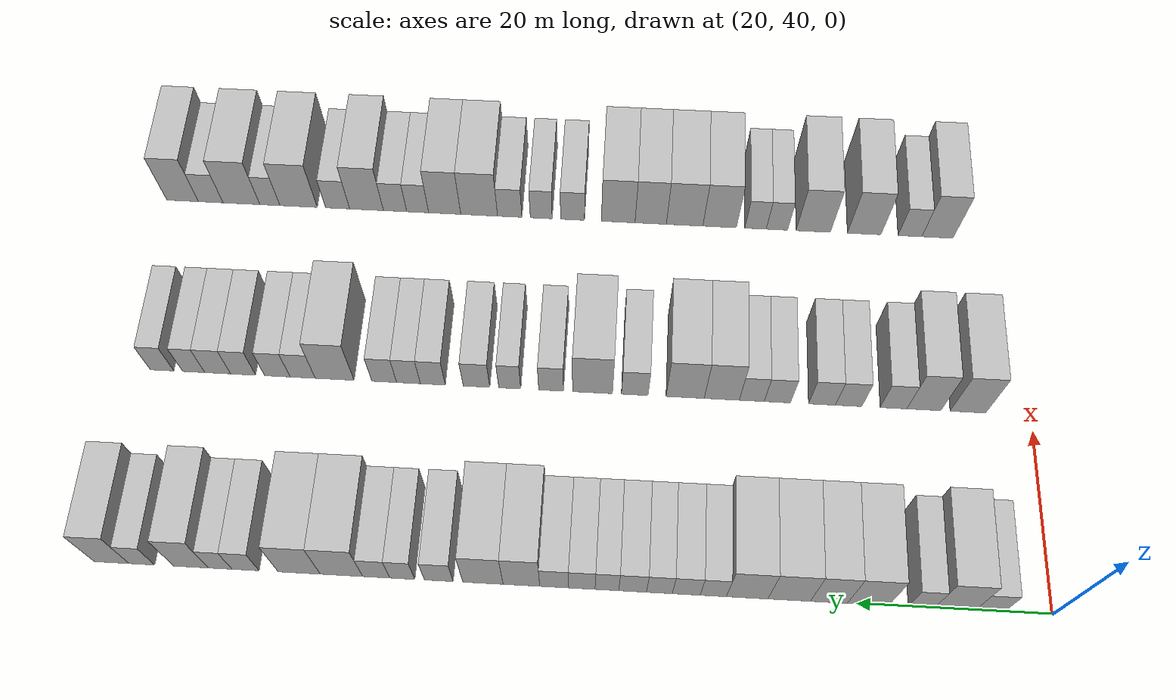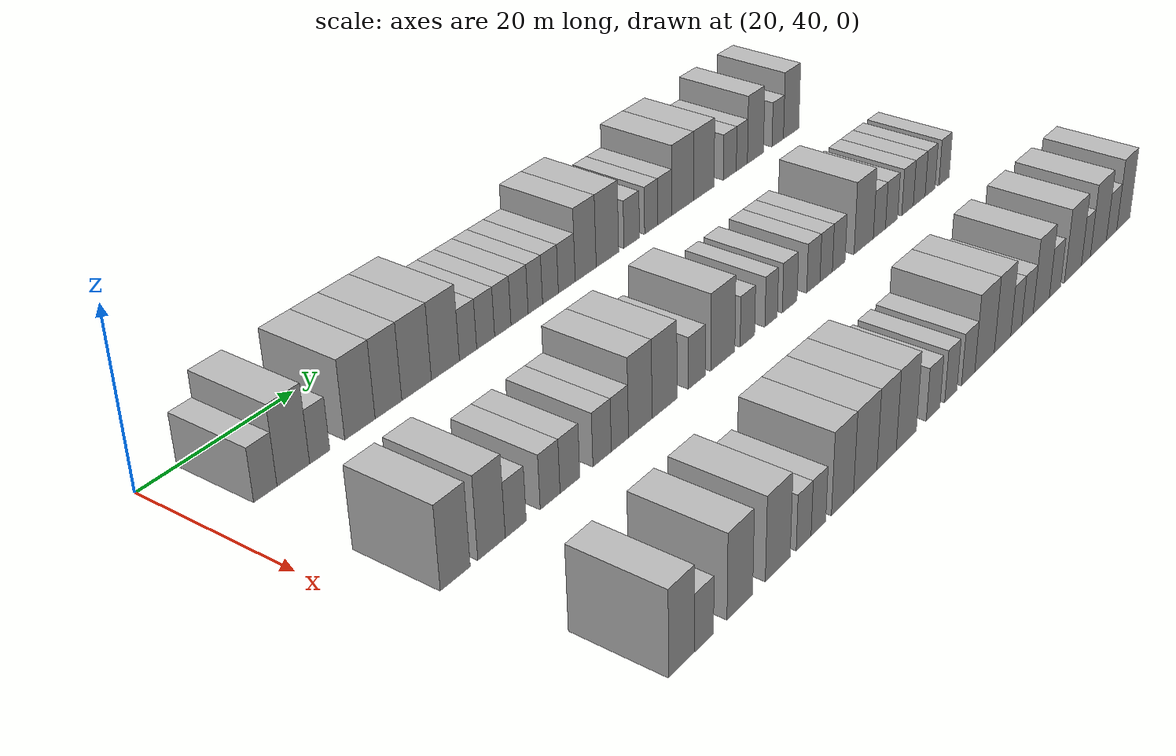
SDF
<sdf version="1.6">
 <world name="default">
  <model name="building_70">
   <static>1</static>
   <pose>25.0000 46.4046 0 0.000000 0.000000 0.000000</pose>
   <link name="link">
    <pose>0 0 3.00 0 0 0</pose>
    <collision name="collision"><geometry><box><size>10.0000 2.9260 6.0000</size></box></geometry></collision>
    <visual name="visual">
     <cast_shadows>0</cast_shadows>
     <geometry><box><size>10.0000 2.9260 6.0000</size></box></geometry>
     <material>
      <script>
       <uri>model://HANNAS_wall/materials/scripts</uri>
       <uri>model://HANNAS_wall/materials/textures</uri>
       <name>vrc/HANNAS_wall</name>
      </script>
     </material>
    </visual>
   </link>
  </model>
  <model name="building_71">
   <static>1</static>
   <pose>25.0000 49.9633 0 0.000000 0.000000 0.000000</pose>
   <link name="link">
    <pose>0 0 4.50 0 0 0</pose>
    <collision name="collision"><geometry><box><size>10.0000 4.1914 9.0000</size></box></geometry></collision>
    <visual name="visual">
     <cast_shadows>0</cast_shadows>
     <geometry><box><size>10.0000 4.1914 9.0000</size></box></geometry>
     <material>
      <script>
       <uri>model://HANNAS_wall/materials/scripts</uri>
       <uri>model://HANNAS_wall/materials/textures</uri>
       <name>vrc/HANNAS_wall</name>
      </script>
     </material>
    </visual>
   </link>
  </model>
  <model name="building_72">
   <static>1</static>
   <pose>25.0000 53.3934 0 0.000000 0.000000 0.000000</pose>
   <link name="link">
    <pose>0 0 3.00 0 0 0</pose>
    <collision name="collision"><geometry><box><size>10.0000 2.6688 6.0000</size></box></geometry></collision>
    <visual name="visual">
     <cast_shadows>0</cast_shadows>
     <geometry><box><size>10.0000 2.6688 6.0000</size></box></geometry>
     <material>
      <script>
       <uri>model://HANNAS_wall/materials/scripts</uri>
       <uri>model://HANNAS_wall/materials/textures</uri>
       <name>vrc/HANNAS_wall</name>
      </script>
     </material>
    </visual>
   </link>
  </model>
  <model name="building_73">
   <static>1</static>
   <pose>25.0000 58.8330 0 0.000000 0.000000 0.000000</pose>
   <link name="link">
    <pose>0 0 4.50 0 0 0</pose>
    <collision name="collision"><geometry><box><size>10.0000 4.2104 9.0000</size></box></geometry></collision>
    <visual name="visual">
     <cast_shadows>0</cast_shadows>
     <geometry><box><size>10.0000 4.2104 9.0000</size></box></geometry>
     <material>
      <script>
       <uri>model://HANNAS_wall/materials/scripts</uri>
       <uri>model://HANNAS_wall/materials/textures</uri>
       <name>vrc/HANNAS_wall</name>
      </script>
     </material>
    </visual>
   </link>
  </model>
  <model name="building_74">
   <static>1</static>
   <pose>25.0000 62.8414 0 0.000000 0.000000 0.000000</pose>
   <link name="link">
    <pose>0 0 4.50 0 0 0</pose>
    <collision name="collision"><geometry><box><size>10.0000 3.8063 9.0000</size></box></geometry></collision>
    <visual name="visual">
     <cast_shadows>0</cast_shadows>
     <geometry><box><size>10.0000 3.8063 9.0000</size></box></geometry>
     <material>
      <script>
       <uri>model://HANNAS_wall/materials/scripts</uri>
       <uri>model://HANNAS_wall/materials/textures</uri>
       <name>vrc/HANNAS_wall</name>
      </script>
     </material>
    </visual>
   </link>
  </model>
  <model name="building_75">
   <static>1</static>
   <pose>25.0000 66.9315 0 0.000000 0.000000 0.000000</pose>
   <link name="link">
    <pose>0 0 4.50 0 0 0</pose>
    <collision name="collision"><geometry><box><size>10.0000 4.3739 9.0000</size></box></geometry></collision>
    <visual name="visual">
     <cast_shadows>0</cast_shadows>
     <geometry><box><size>10.0000 4.3739 9.0000</size></box></geometry>
     <material>
      <script>
       <uri>model://HANNAS_wall/materials/scripts</uri>
       <uri>model://HANNAS_wall/materials/textures</uri>
       <name>vrc/HANNAS_wall</name>
      </script>
     </material>
    </visual>
   </link>
  </model>
  <model name="building_76">
   <static>1</static>
   <pose>25.0000 71.2553 0 0.000000 0.000000 0.000000</pose>
   <link name="link">
    <pose>0 0 4.50 0 0 0</pose>
    <collision name="collision"><geometry><box><size>10.0000 4.2737 9.0000</size></box></geometry></collision>
    <visual name="visual">
     <cast_shadows>0</cast_shadows>
     <geometry><box><size>10.0000 4.2737 9.0000</size></box></geometry>
     <material>
      <script>
       <uri>model://HANNAS_wall/materials/scripts</uri>
       <uri>model://HANNAS_wall/materials/textures</uri>
       <name>vrc/HANNAS_wall</name>
      </script>
     </material>
    </visual>
   </link>
  </model>
  <model name="building_77">
   <static>1</static>
   <pose>25.0000 74.7431 0 0.000000 0.000000 0.000000</pose>
   <link name="link">
    <pose>0 0 3.00 0 0 0</pose>
    <collision name="collision"><geometry><box><size>10.0000 2.7020 6.0000</size></box></geometry></collision>
    <visual name="visual">
     <cast_shadows>0</cast_shadows>
     <geometry><box><size>10.0000 2.7020 6.0000</size></box></geometry>
     <material>
      <script>
       <uri>model://HANNAS_wall/materials/scripts</uri>
       <uri>model://HANNAS_wall/materials/textures</uri>
       <name>vrc/HANNAS_wall</name>
      </script>
     </material>
    </visual>
   </link>
  </model>
  <model name="building_78">
   <static>1</static>
   <pose>25.0000 77.5304 0 0.000000 0.000000 0.000000</pose>
   <link name="link">
    <pose>0 0 3.00 0 0 0</pose>
    <collision name="collision"><geometry><box><size>10.0000 2.8726 6.0000</size></box></geometry></collision>
    <visual name="visual">
     <cast_shadows>0</cast_shadows>
     <geometry><box><size>10.0000 2.8726 6.0000</size></box></geometry>
     <material>
      <script>
       <uri>model://HANNAS_wall/materials/scripts</uri>
       <uri>model://HANNAS_wall/materials/textures</uri>
       <name>vrc/HANNAS_wall</name>
      </script>
     </material>
    </visual>
   </link>
  </model>
  <model name="building_79">
   <static>1</static>
   <pose>25.0000 80.3049 0 0.000000 0.000000 0.000000</pose>
   <link name="link">
    <pose>0 0 3.00 0 0 0</pose>
    <collision name="collision"><geometry><box><size>10.0000 2.6762 6.0000</size></box></geometry></collision>
    <visual name="visual">
     <cast_shadows>0</cast_shadows>
     <geometry><box><size>10.0000 2.6762 6.0000</size></box></geometry>
     <material>
      <script>
       <uri>model://HANNAS_wall/materials/scripts</uri>
       <uri>model://HANNAS_wall/materials/textures</uri>
       <name>vrc/HANNAS_wall</name>
      </script>
     </material>
    </visual>
   </link>
  </model>
  <model name="building_80">
   <static>1</static>
   <pose>25.0000 83.0721 0 0.000000 0.000000 0.000000</pose>
   <link name="link">
    <pose>0 0 3.00 0 0 0</pose>
    <collision name="collision"><geometry><box><size>10.0000 2.8583 6.0000</size></box></geometry></collision>
    <visual name="visual">
     <cast_shadows>0</cast_shadows>
     <geometry><box><size>10.0000 2.8583 6.0000</size></box></geometry>
     <material>
      <script>
       <uri>model://HANNAS_wall/materials/scripts</uri>
       <uri>model://HANNAS_wall/materials/textures</uri>
       <name>vrc/HANNAS_wall</name>
      </script>
     </material>
    </visual>
   </link>
  </model>
  <model name="building_81">
   <static>1</static>
   <pose>25.0000 85.7258 0 0.000000 0.000000 0.000000</pose>
   <link name="link">
    <pose>0 0 3.00 0 0 0</pose>
    <collision name="collision"><geometry><box><size>10.0000 2.4491 6.0000</size></box></geometry></collision>
    <visual name="visual">
     <cast_shadows>0</cast_shadows>
     <geometry><box><size>10.0000 2.4491 6.0000</size></box></geometry>
     <material>
      <script>
       <uri>model://HANNAS_wall/materials/scripts</uri>
       <uri>model://HANNAS_wall/materials/textures</uri>
       <name>vrc/HANNAS_wall</name>
      </script>
     </material>
    </visual>
   </link>
  </model>
  <model name="building_82">
   <static>1</static>
   <pose>25.0000 88.3203 0 0.000000 0.000000 0.000000</pose>
   <link name="link">
    <pose>0 0 3.00 0 0 0</pose>
    <collision name="collision"><geometry><box><size>10.0000 2.7400 6.0000</size></box></geometry></collision>
    <visual name="visual">
     <cast_shadows>0</cast_shadows>
     <geometry><box><size>10.0000 2.7400 6.0000</size></box></geometry>
     <material>
      <script>
       <uri>model://HANNAS_wall/materials/scripts</uri>
       <uri>model://HANNAS_wall/materials/textures</uri>
       <name>vrc/HANNAS_wall</name>
      </script>
     </material>
    </visual>
   </link>
  </model>
  <model name="building_83">
   <static>1</static>
   <pose>25.0000 91.1798 0 0.000000 0.000000 0.000000</pose>
   <link name="link">
    <pose>0 0 3.00 0 0 0</pose>
    <collision name="collision"><geometry><box><size>10.0000 2.9789 6.0000</size></box></geometry></collision>
    <visual name="visual">
     <cast_shadows>0</cast_shadows>
     <geometry><box><size>10.0000 2.9789 6.0000</size></box></geometry>
     <material>
      <script>
       <uri>model://HANNAS_wall/materials/scripts</uri>
       <uri>model://HANNAS_wall/materials/textures</uri>
       <name>vrc/HANNAS_wall</name>
      </script>
     </material>
    </visual>
   </link>
  </model>
  <model name="building_84">
   <static>1</static>
   <pose>25.0000 94.5702 0 0.000000 0.000000 0.000000</pose>
   <link name="link">
    <pose>0 0 4.50 0 0 0</pose>
    <collision name="collision"><geometry><box><size>10.0000 3.8020 9.0000</size></box></geometry></collision>
    <visual name="visual">
     <cast_shadows>0</cast_shadows>
     <geometry><box><size>10.0000 3.8020 9.0000</size></box></geometry>
     <material>
      <script>
       <uri>model://HANNAS_wall/materials/scripts</uri>
       <uri>model://HANNAS_wall/materials/textures</uri>
       <name>vrc/HANNAS_wall</name>
      </script>
     </material>
    </visual>
   </link>
  </model>
  <model name="building_85">
   <static>1</static>
   <pose>25.0000 98.5668 0 0.000000 0.000000 0.000000</pose>
   <link name="link">
    <pose>0 0 4.50 0 0 0</pose>
    <collision name="collision"><geometry><box><size>10.0000 4.1911 9.0000</size></box></geometry></collision>
    <visual name="visual">
     <cast_shadows>0</cast_shadows>
     <geometry><box><size>10.0000 4.1911 9.0000</size></box></geometry>
     <material>
      <script>
       <uri>model://HANNAS_wall/materials/scripts</uri>
       <uri>model://HANNAS_wall/materials/textures</uri>
       <name>vrc/HANNAS_wall</name>
      </script>
     </material>
    </visual>
   </link>
  </model>
  <model name="building_86">
   <static>1</static>
   <pose>25.0000 103.1557 0 0.000000 0.000000 0.000000</pose>
   <link name="link">
    <pose>0 0 3.00 0 0 0</pose>
    <collision name="collision"><geometry><box><size>10.0000 2.9868 6.0000</size></box></geometry></collision>
    <visual name="visual">
     <cast_shadows>0</cast_shadows>
     <geometry><box><size>10.0000 2.9868 6.0000</size></box></geometry>
     <material>
      <script>
       <uri>model://HANNAS_wall/materials/scripts</uri>
       <uri>model://HANNAS_wall/materials/textures</uri>
       <name>vrc/HANNAS_wall</name>
      </script>
     </material>
    </visual>
   </link>
  </model>
  <model name="building_87">
   <static>1</static>
   <pose>25.0000 106.9450 0 0.000000 0.000000 0.000000</pose>
   <link name="link">
    <pose>0 0 3.00 0 0 0</pose>
    <collision name="collision"><geometry><box><size>10.0000 2.5917 6.0000</size></box></geometry></collision>
    <visual name="visual">
     <cast_shadows>0</cast_shadows>
     <geometry><box><size>10.0000 2.5917 6.0000</size></box></geometry>
     <material>
      <script>
       <uri>model://HANNAS_wall/materials/scripts</uri>
       <uri>model://HANNAS_wall/materials/textures</uri>
       <name>vrc/HANNAS_wall</name>
      </script>
     </material>
    </visual>
   </link>
  </model>
  <model name="building_88">
   <static>1</static>
   <pose>25.0000 109.6598 0 0.000000 0.000000 0.000000</pose>
   <link name="link">
    <pose>0 0 3.00 0 0 0</pose>
    <collision name="collision"><geometry><box><size>10.0000 2.8379 6.0000</size></box></geometry></collision>
    <visual name="visual">
     <cast_shadows>0</cast_shadows>
     <geometry><box><size>10.0000 2.8379 6.0000</size></box></geometry>
     <material>
      <script>
       <uri>model://HANNAS_wall/materials/scripts</uri>
       <uri>model://HANNAS_wall/materials/textures</uri>
       <name>vrc/HANNAS_wall</name>
      </script>
     </material>
    </visual>
   </link>
  </model>
  <model name="building_89">
   <static>1</static>
   <pose>25.0000 113.3002 0 0.000000 0.000000 0.000000</pose>
   <link name="link">
    <pose>0 0 4.50 0 0 0</pose>
    <collision name="collision"><geometry><box><size>10.0000 4.4428 9.0000</size></box></geometry></collision>
    <visual name="visual">
     <cast_shadows>0</cast_shadows>
     <geometry><box><size>10.0000 4.4428 9.0000</size></box></geometry>
     <material>
      <script>
       <uri>model://HANNAS_wall/materials/scripts</uri>
       <uri>model://HANNAS_wall/materials/textures</uri>
       <name>vrc/HANNAS_wall</name>
      </script>
     </material>
    </visual>
   </link>
  </model>
  <model name="building_90">
   <static>1</static>
   <pose>25.0000 117.7229 0 0.000000 0.000000 0.000000</pose>
   <link name="link">
    <pose>0 0 4.50 0 0 0</pose>
    <collision name="collision"><geometry><box><size>10.0000 4.4026 9.0000</size></box></geometry></collision>
    <visual name="visual">
     <cast_shadows>0</cast_shadows>
     <geometry><box><size>10.0000 4.4026 9.0000</size></box></geometry>
     <material>
      <script>
       <uri>model://HANNAS_wall/materials/scripts</uri>
       <uri>model://HANNAS_wall/materials/textures</uri>
       <name>vrc/HANNAS_wall</name>
      </script>
     </material>
    </visual>
   </link>
  </model>
  <model name="building_91">
   <static>1</static>
   <pose>25.0000 123.3410 0 0.000000 0.000000 0.000000</pose>
   <link name="link">
    <pose>0 0 3.00 0 0 0</pose>
    <collision name="collision"><geometry><box><size>10.0000 2.8338 6.0000</size></box></geometry></collision>
    <visual name="visual">
     <cast_shadows>0</cast_shadows>
     <geometry><box><size>10.0000 2.8338 6.0000</size></box></geometry>
     <material>
      <script>
       <uri>model://HANNAS_wall/materials/scripts</uri>
       <uri>model://HANNAS_wall/materials/textures</uri>
       <name>vrc/HANNAS_wall</name>
      </script>
     </material>
    </visual>
   </link>
  </model>
  <model name="building_92">
   <static>1</static>
   <pose>25.0000 125.9949 0 0.000000 0.000000 0.000000</pose>
   <link name="link">
    <pose>0 0 3.00 0 0 0</pose>
    <collision name="collision"><geometry><box><size>10.0000 2.4739 6.0000</size></box></geometry></collision>
    <visual name="visual">
     <cast_shadows>0</cast_shadows>
     <geometry><box><size>10.0000 2.4739 6.0000</size></box></geometry>
     <material>
      <script>
       <uri>model://HANNAS_wall/materials/scripts</uri>
       <uri>model://HANNAS_wall/materials/textures</uri>
       <name>vrc/HANNAS_wall</name>
      </script>
     </material>
    </visual>
   </link>
  </model>
  <model name="building_93">
   <static>1</static>
   <pose>25.0000 129.0610 0 0.000000 0.000000 0.000000</pose>
   <link name="link">
    <pose>0 0 4.50 0 0 0</pose>
    <collision name="collision"><geometry><box><size>10.0000 3.6583 9.0000</size></box></geometry></collision>
    <visual name="visual">
     <cast_shadows>0</cast_shadows>
     <geometry><box><size>10.0000 3.6583 9.0000</size></box></geometry>
     <material>
      <script>
       <uri>model://HANNAS_wall/materials/scripts</uri>
       <uri>model://HANNAS_wall/materials/textures</uri>
       <name>vrc/HANNAS_wall</name>
      </script>
     </material>
    </visual>
   </link>
  </model>
  <model name="building_94">
   <static>1</static>
   <pose>25.0000 134.2347 0 0.000000 0.000000 0.000000</pose>
   <link name="link">
    <pose>0 0 3.00 0 0 0</pose>
    <collision name="collision"><geometry><box><size>10.0000 2.6890 6.0000</size></box></geometry></collision>
    <visual name="visual">
     <cast_shadows>0</cast_shadows>
     <geometry><box><size>10.0000 2.6890 6.0000</size></box></geometry>
     <material>
      <script>
       <uri>model://HANNAS_wall/materials/scripts</uri>
       <uri>model://HANNAS_wall/materials/textures</uri>
       <name>vrc/HANNAS_wall</name>
      </script>
     </material>
    </visual>
   </link>
  </model>
  <model name="building_95">
   <static>1</static>
   <pose>25.0000 137.4151 0 0.000000 0.000000 0.000000</pose>
   <link name="link">
    <pose>0 0 4.50 0 0 0</pose>
    <collision name="collision"><geometry><box><size>10.0000 3.6720 9.0000</size></box></geometry></collision>
    <visual name="visual">
     <cast_shadows>0</cast_shadows>
     <geometry><box><size>10.0000 3.6720 9.0000</size></box></geometry>
     <material>
      <script>
       <uri>model://HANNAS_wall/materials/scripts</uri>
       <uri>model://HANNAS_wall/materials/textures</uri>
       <name>vrc/HANNAS_wall</name>
      </script>
     </material>
    </visual>
   </link>
  </model>
  <model name="building_201">
   <static>1</static>
   <pose>47.0000 46.9475 0 0.000000 0.000000 0.000000</pose>
   <link name="link">
    <pose>0 0 4.50 0 0 0</pose>
    <collision name="collision"><geometry><box><size>10.0000 3.9105 9.0000</size></box></geometry></collision>
    <visual name="visual">
     <cast_shadows>0</cast_shadows>
     <geometry><box><size>10.0000 3.9105 9.0000</size></box></geometry>
     <material>
      <script>
       <uri>model://HANNAS_wall/materials/scripts</uri>
       <uri>model://HANNAS_wall/materials/textures</uri>
       <name>vrc/HANNAS_wall</name>
      </script>
     </material>
    </visual>
   </link>
  </model>
  <model name="building_202">
   <static>1</static>
   <pose>47.0000 51.7742 0 0.000000 0.000000 0.000000</pose>
   <link name="link">
    <pose>0 0 4.50 0 0 0</pose>
    <collision name="collision"><geometry><box><size>10.0000 3.7430 9.0000</size></box></geometry></collision>
    <visual name="visual">
     <cast_shadows>0</cast_shadows>
     <geometry><box><size>10.0000 3.7430 9.0000</size></box></geometry>
     <material>
      <script>
       <uri>model://HANNAS_wall/materials/scripts</uri>
       <uri>model://HANNAS_wall/materials/textures</uri>
       <name>vrc/HANNAS_wall</name>
      </script>
     </material>
    </visual>
   </link>
  </model>
  <model name="building_203">
   <static>1</static>
   <pose>47.0000 55.1108 0 0.000000 0.000000 0.000000</pose>
   <link name="link">
    <pose>0 0 3.00 0 0 0</pose>
    <collision name="collision"><geometry><box><size>10.0000 2.9302 6.0000</size></box></geometry></collision>
    <visual name="visual">
     <cast_shadows>0</cast_shadows>
     <geometry><box><size>10.0000 2.9302 6.0000</size></box></geometry>
     <material>
      <script>
       <uri>model://HANNAS_wall/materials/scripts</uri>
       <uri>model://HANNAS_wall/materials/textures</uri>
       <name>vrc/HANNAS_wall</name>
      </script>
     </material>
    </visual>
   </link>
  </model>
  <model name="building_204">
   <static>1</static>
   <pose>47.0000 60.0287 0 0.000000 0.000000 0.000000</pose>
   <link name="link">
    <pose>0 0 3.00 0 0 0</pose>
    <collision name="collision"><geometry><box><size>10.0000 2.9055 6.0000</size></box></geometry></collision>
    <visual name="visual">
     <cast_shadows>0</cast_shadows>
     <geometry><box><size>10.0000 2.9055 6.0000</size></box></geometry>
     <material>
      <script>
       <uri>model://HANNAS_wall/materials/scripts</uri>
       <uri>model://HANNAS_wall/materials/textures</uri>
       <name>vrc/HANNAS_wall</name>
      </script>
     </material>
    </visual>
   </link>
  </model>
  <model name="building_205">
   <static>1</static>
   <pose>47.0000 62.9613 0 0.000000 0.000000 0.000000</pose>
   <link name="link">
    <pose>0 0 3.00 0 0 0</pose>
    <collision name="collision"><geometry><box><size>10.0000 2.9596 6.0000</size></box></geometry></collision>
    <visual name="visual">
     <cast_shadows>0</cast_shadows>
     <geometry><box><size>10.0000 2.9596 6.0000</size></box></geometry>
     <material>
      <script>
       <uri>model://HANNAS_wall/materials/scripts</uri>
       <uri>model://HANNAS_wall/materials/textures</uri>
       <name>vrc/HANNAS_wall</name>
      </script>
     </material>
    </visual>
   </link>
  </model>
  <model name="building_206">
   <static>1</static>
   <pose>47.0000 67.8845 0 0.000000 0.000000 0.000000</pose>
   <link name="link">
    <pose>0 0 3.00 0 0 0</pose>
    <collision name="collision"><geometry><box><size>10.0000 2.8867 6.0000</size></box></geometry></collision>
    <visual name="visual">
     <cast_shadows>0</cast_shadows>
     <geometry><box><size>10.0000 2.8867 6.0000</size></box></geometry>
     <material>
      <script>
       <uri>model://HANNAS_wall/materials/scripts</uri>
       <uri>model://HANNAS_wall/materials/textures</uri>
       <name>vrc/HANNAS_wall</name>
      </script>
     </material>
    </visual>
   </link>
  </model>
  <model name="building_207">
   <static>1</static>
   <pose>47.0000 70.7009 0 0.000000 0.000000 0.000000</pose>
   <link name="link">
    <pose>0 0 3.00 0 0 0</pose>
    <collision name="collision"><geometry><box><size>10.0000 2.7460 6.0000</size></box></geometry></collision>
    <visual name="visual">
     <cast_shadows>0</cast_shadows>
     <geometry><box><size>10.0000 2.7460 6.0000</size></box></geometry>
     <material>
      <script>
       <uri>model://HANNAS_wall/materials/scripts</uri>
       <uri>model://HANNAS_wall/materials/textures</uri>
       <name>vrc/HANNAS_wall</name>
      </script>
     </material>
    </visual>
   </link>
  </model>
  <model name="building_208">
   <static>1</static>
   <pose>47.0000 74.0107 0 0.000000 0.000000 0.000000</pose>
   <link name="link">
    <pose>0 0 4.50 0 0 0</pose>
    <collision name="collision"><geometry><box><size>10.0000 3.8736 9.0000</size></box></geometry></collision>
    <visual name="visual">
     <cast_shadows>0</cast_shadows>
     <geometry><box><size>10.0000 3.8736 9.0000</size></box></geometry>
     <material>
      <script>
       <uri>model://HANNAS_wall/materials/scripts</uri>
       <uri>model://HANNAS_wall/materials/textures</uri>
       <name>vrc/HANNAS_wall</name>
      </script>
     </material>
    </visual>
   </link>
  </model>
  <model name="building_209">
   <static>1</static>
   <pose>47.0000 78.0562 0 0.000000 0.000000 0.000000</pose>
   <link name="link">
    <pose>0 0 4.50 0 0 0</pose>
    <collision name="collision"><geometry><box><size>10.0000 4.2174 9.0000</size></box></geometry></collision>
    <visual name="visual">
     <cast_shadows>0</cast_shadows>
     <geometry><box><size>10.0000 4.2174 9.0000</size></box></geometry>
     <material>
      <script>
       <uri>model://HANNAS_wall/materials/scripts</uri>
       <uri>model://HANNAS_wall/materials/textures</uri>
       <name>vrc/HANNAS_wall</name>
      </script>
     </material>
    </visual>
   </link>
  </model>
  <model name="building_210">
   <static>1</static>
   <pose>47.0000 83.6376 0 0.000000 0.000000 0.000000</pose>
   <link name="link">
    <pose>0 0 3.00 0 0 0</pose>
    <collision name="collision"><geometry><box><size>10.0000 2.9455 6.0000</size></box></geometry></collision>
    <visual name="visual">
     <cast_shadows>0</cast_shadows>
     <geometry><box><size>10.0000 2.9455 6.0000</size></box></geometry>
     <material>
      <script>
       <uri>model://HANNAS_wall/materials/scripts</uri>
       <uri>model://HANNAS_wall/materials/textures</uri>
       <name>vrc/HANNAS_wall</name>
      </script>
     </material>
    </visual>
   </link>
  </model>
  <model name="building_211">
   <static>1</static>
   <pose>47.0000 88.3221 0 0.000000 0.000000 0.000000</pose>
   <link name="link">
    <pose>0 0 4.50 0 0 0</pose>
    <collision name="collision"><geometry><box><size>10.0000 4.4234 9.0000</size></box></geometry></collision>
    <visual name="visual">
     <cast_shadows>0</cast_shadows>
     <geometry><box><size>10.0000 4.4234 9.0000</size></box></geometry>
     <material>
      <script>
       <uri>model://HANNAS_wall/materials/scripts</uri>
       <uri>model://HANNAS_wall/materials/textures</uri>
       <name>vrc/HANNAS_wall</name>
      </script>
     </material>
    </visual>
   </link>
  </model>
  <model name="building_212">
   <static>1</static>
   <pose>47.0000 92.9090 0 0.000000 0.000000 0.000000</pose>
   <link name="link">
    <pose>0 0 3.00 0 0 0</pose>
    <collision name="collision"><geometry><box><size>10.0000 2.7504 6.0000</size></box></geometry></collision>
    <visual name="visual">
     <cast_shadows>0</cast_shadows>
     <geometry><box><size>10.0000 2.7504 6.0000</size></box></geometry>
     <material>
      <script>
       <uri>model://HANNAS_wall/materials/scripts</uri>
       <uri>model://HANNAS_wall/materials/textures</uri>
       <name>vrc/HANNAS_wall</name>
      </script>
     </material>
    </visual>
   </link>
  </model>
  <model name="building_213">
   <static>1</static>
   <pose>47.0000 97.5053 0 0.000000 0.000000 0.000000</pose>
   <link name="link">
    <pose>0 0 3.00 0 0 0</pose>
    <collision name="collision"><geometry><box><size>10.0000 2.4422 6.0000</size></box></geometry></collision>
    <visual name="visual">
     <cast_shadows>0</cast_shadows>
     <geometry><box><size>10.0000 2.4422 6.0000</size></box></geometry>
     <material>
      <script>
       <uri>model://HANNAS_wall/materials/scripts</uri>
       <uri>model://HANNAS_wall/materials/textures</uri>
       <name>vrc/HANNAS_wall</name>
      </script>
     </material>
    </visual>
   </link>
  </model>
  <model name="building_214">
   <static>1</static>
   <pose>47.0000 101.2082 0 0.000000 0.000000 0.000000</pose>
   <link name="link">
    <pose>0 0 3.00 0 0 0</pose>
    <collision name="collision"><geometry><box><size>10.0000 2.9635 6.0000</size></box></geometry></collision>
    <visual name="visual">
     <cast_shadows>0</cast_shadows>
     <geometry><box><size>10.0000 2.9635 6.0000</size></box></geometry>
     <material>
      <script>
       <uri>model://HANNAS_wall/materials/scripts</uri>
       <uri>model://HANNAS_wall/materials/textures</uri>
       <name>vrc/HANNAS_wall</name>
      </script>
     </material>
    </visual>
   </link>
  </model>
  <model name="building_215">
   <static>1</static>
   <pose>47.0000 106.0768 0 0.000000 0.000000 0.000000</pose>
   <link name="link">
    <pose>0 0 3.00 0 0 0</pose>
    <collision name="collision"><geometry><box><size>10.0000 2.7738 6.0000</size></box></geometry></collision>
    <visual name="visual">
     <cast_shadows>0</cast_shadows>
     <geometry><box><size>10.0000 2.7738 6.0000</size></box></geometry>
     <material>
      <script>
       <uri>model://HANNAS_wall/materials/scripts</uri>
       <uri>model://HANNAS_wall/materials/textures</uri>
       <name>vrc/HANNAS_wall</name>
      </script>
     </material>
    </visual>
   </link>
  </model>
  <model name="building_216">
   <static>1</static>
   <pose>47.0000 108.7914 0 0.000000 0.000000 0.000000</pose>
   <link name="link">
    <pose>0 0 3.00 0 0 0</pose>
    <collision name="collision"><geometry><box><size>10.0000 2.6555 6.0000</size></box></geometry></collision>
    <visual name="visual">
     <cast_shadows>0</cast_shadows>
     <geometry><box><size>10.0000 2.6555 6.0000</size></box></geometry>
     <material>
      <script>
       <uri>model://HANNAS_wall/materials/scripts</uri>
       <uri>model://HANNAS_wall/materials/textures</uri>
       <name>vrc/HANNAS_wall</name>
      </script>
     </material>
    </visual>
   </link>
  </model>
  <model name="building_217">
   <static>1</static>
   <pose>47.0000 111.4999 0 0.000000 0.000000 0.000000</pose>
   <link name="link">
    <pose>0 0 3.00 0 0 0</pose>
    <collision name="collision"><geometry><box><size>10.0000 2.7614 6.0000</size></box></geometry></collision>
    <visual name="visual">
     <cast_shadows>0</cast_shadows>
     <geometry><box><size>10.0000 2.7614 6.0000</size></box></geometry>
     <material>
      <script>
       <uri>model://HANNAS_wall/materials/scripts</uri>
       <uri>model://HANNAS_wall/materials/textures</uri>
       <name>vrc/HANNAS_wall</name>
      </script>
     </material>
    </visual>
   </link>
  </model>
  <model name="building_218">
   <static>1</static>
   <pose>47.0000 117.0574 0 0.000000 0.000000 0.000000</pose>
   <link name="link">
    <pose>0 0 4.50 0 0 0</pose>
    <collision name="collision"><geometry><box><size>10.0000 4.3537 9.0000</size></box></geometry></collision>
    <visual name="visual">
     <cast_shadows>0</cast_shadows>
     <geometry><box><size>10.0000 4.3537 9.0000</size></box></geometry>
     <material>
      <script>
       <uri>model://HANNAS_wall/materials/scripts</uri>
       <uri>model://HANNAS_wall/materials/textures</uri>
       <name>vrc/HANNAS_wall</name>
      </script>
     </material>
    </visual>
   </link>
  </model>
  <model name="building_219">
   <static>1</static>
   <pose>47.0000 120.6484 0 0.000000 0.000000 0.000000</pose>
   <link name="link">
    <pose>0 0 3.00 0 0 0</pose>
    <collision name="collision"><geometry><box><size>10.0000 2.8281 6.0000</size></box></geometry></collision>
    <visual name="visual">
     <cast_shadows>0</cast_shadows>
     <geometry><box><size>10.0000 2.8281 6.0000</size></box></geometry>
     <material>
      <script>
       <uri>model://HANNAS_wall/materials/scripts</uri>
       <uri>model://HANNAS_wall/materials/textures</uri>
       <name>vrc/HANNAS_wall</name>
      </script>
     </material>
    </visual>
   </link>
  </model>
  <model name="building_220">
   <static>1</static>
   <pose>47.0000 123.4913 0 0.000000 0.000000 0.000000</pose>
   <link name="link">
    <pose>0 0 3.00 0 0 0</pose>
    <collision name="collision"><geometry><box><size>10.0000 2.8578 6.0000</size></box></geometry></collision>
    <visual name="visual">
     <cast_shadows>0</cast_shadows>
     <geometry><box><size>10.0000 2.8578 6.0000</size></box></geometry>
     <material>
      <script>
       <uri>model://HANNAS_wall/materials/scripts</uri>
       <uri>model://HANNAS_wall/materials/textures</uri>
       <name>vrc/HANNAS_wall</name>
      </script>
     </material>
    </visual>
   </link>
  </model>
  <model name="building_221">
   <static>1</static>
   <pose>47.0000 127.3237 0 0.000000 0.000000 0.000000</pose>
   <link name="link">
    <pose>0 0 3.00 0 0 0</pose>
    <collision name="collision"><geometry><box><size>10.0000 2.8071 6.0000</size></box></geometry></collision>
    <visual name="visual">
     <cast_shadows>0</cast_shadows>
     <geometry><box><size>10.0000 2.8071 6.0000</size></box></geometry>
     <material>
      <script>
       <uri>model://HANNAS_wall/materials/scripts</uri>
       <uri>model://HANNAS_wall/materials/textures</uri>
       <name>vrc/HANNAS_wall</name>
      </script>
     </material>
    </visual>
   </link>
  </model>
  <model name="building_222">
   <static>1</static>
   <pose>47.0000 130.1887 0 0.000000 0.000000 0.000000</pose>
   <link name="link">
    <pose>0 0 3.00 0 0 0</pose>
    <collision name="collision"><geometry><box><size>10.0000 2.9228 6.0000</size></box></geometry></collision>
    <visual name="visual">
     <cast_shadows>0</cast_shadows>
     <geometry><box><size>10.0000 2.9228 6.0000</size></box></geometry>
     <material>
      <script>
       <uri>model://HANNAS_wall/materials/scripts</uri>
       <uri>model://HANNAS_wall/materials/textures</uri>
       <name>vrc/HANNAS_wall</name>
      </script>
     </material>
    </visual>
   </link>
  </model>
  <model name="building_223">
   <static>1</static>
   <pose>47.0000 132.8919 0 0.000000 0.000000 0.000000</pose>
   <link name="link">
    <pose>0 0 3.00 0 0 0</pose>
    <collision name="collision"><geometry><box><size>10.0000 2.4835 6.0000</size></box></geometry></collision>
    <visual name="visual">
     <cast_shadows>0</cast_shadows>
     <geometry><box><size>10.0000 2.4835 6.0000</size></box></geometry>
     <material>
      <script>
       <uri>model://HANNAS_wall/materials/scripts</uri>
       <uri>model://HANNAS_wall/materials/textures</uri>
       <name>vrc/HANNAS_wall</name>
      </script>
     </material>
    </visual>
   </link>
  </model>
  <model name="building_224">
   <static>1</static>
   <pose>47.0000 136.4555 0 0.000000 0.000000 0.000000</pose>
   <link name="link">
    <pose>0 0 3.00 0 0 0</pose>
    <collision name="collision"><geometry><box><size>10.0000 2.6437 6.0000</size></box></geometry></collision>
    <visual name="visual">
     <cast_shadows>0</cast_shadows>
     <geometry><box><size>10.0000 2.6437 6.0000</size></box></geometry>
     <material>
      <script>
       <uri>model://HANNAS_wall/materials/scripts</uri>
       <uri>model://HANNAS_wall/materials/textures</uri>
       <name>vrc/HANNAS_wall</name>
      </script>
     </material>
    </visual>
   </link>
  </model>
  <model name="building_327">
   <static>1</static>
   <pose>69.0000 48.8584 0 0.000000 0.000000 0.000000</pose>
   <link name="link">
    <pose>0 0 4.50 0 0 0</pose>
    <collision name="collision"><geometry><box><size>10.0000 3.6538 9.0000</size></box></geometry></collision>
    <visual name="visual">
     <cast_shadows>0</cast_shadows>
     <geometry><box><size>10.0000 3.6538 9.0000</size></box></geometry>
     <material>
      <script>
       <uri>model://HANNAS_wall/materials/scripts</uri>
       <uri>model://HANNAS_wall/materials/textures</uri>
       <name>vrc/HANNAS_wall</name>
      </script>
     </material>
    </visual>
   </link>
  </model>
  <model name="building_328">
   <static>1</static>
   <pose>69.0000 52.0707 0 0.000000 0.000000 0.000000</pose>
   <link name="link">
    <pose>0 0 3.00 0 0 0</pose>
    <collision name="collision"><geometry><box><size>10.0000 2.7707 6.0000</size></box></geometry></collision>
    <visual name="visual">
     <cast_shadows>0</cast_shadows>
     <geometry><box><size>10.0000 2.7707 6.0000</size></box></geometry>
     <material>
      <script>
       <uri>model://HANNAS_wall/materials/scripts</uri>
       <uri>model://HANNAS_wall/materials/textures</uri>
       <name>vrc/HANNAS_wall</name>
      </script>
     </material>
    </visual>
   </link>
  </model>
  <model name="building_329">
   <static>1</static>
   <pose>69.0000 57.4235 0 0.000000 0.000000 0.000000</pose>
   <link name="link">
    <pose>0 0 4.50 0 0 0</pose>
    <collision name="collision"><geometry><box><size>10.0000 3.9350 9.0000</size></box></geometry></collision>
    <visual name="visual">
     <cast_shadows>0</cast_shadows>
     <geometry><box><size>10.0000 3.9350 9.0000</size></box></geometry>
     <material>
      <script>
       <uri>model://HANNAS_wall/materials/scripts</uri>
       <uri>model://HANNAS_wall/materials/textures</uri>
       <name>vrc/HANNAS_wall</name>
      </script>
     </material>
    </visual>
   </link>
  </model>
  <model name="building_330">
   <static>1</static>
   <pose>69.0000 63.4037 0 0.000000 0.000000 0.000000</pose>
   <link name="link">
    <pose>0 0 4.50 0 0 0</pose>
    <collision name="collision"><geometry><box><size>10.0000 4.0255 9.0000</size></box></geometry></collision>
    <visual name="visual">
     <cast_shadows>0</cast_shadows>
     <geometry><box><size>10.0000 4.0255 9.0000</size></box></geometry>
     <material>
      <script>
       <uri>model://HANNAS_wall/materials/scripts</uri>
       <uri>model://HANNAS_wall/materials/textures</uri>
       <name>vrc/HANNAS_wall</name>
      </script>
     </material>
    </visual>
   </link>
  </model>
  <model name="building_331">
   <static>1</static>
   <pose>69.0000 67.6685 0 0.000000 0.000000 0.000000</pose>
   <link name="link">
    <pose>0 0 3.00 0 0 0</pose>
    <collision name="collision"><geometry><box><size>10.0000 2.5040 6.0000</size></box></geometry></collision>
    <visual name="visual">
     <cast_shadows>0</cast_shadows>
     <geometry><box><size>10.0000 2.5040 6.0000</size></box></geometry>
     <material>
      <script>
       <uri>model://HANNAS_wall/materials/scripts</uri>
       <uri>model://HANNAS_wall/materials/textures</uri>
       <name>vrc/HANNAS_wall</name>
      </script>
     </material>
    </visual>
   </link>
  </model>
  <model name="building_332">
   <static>1</static>
   <pose>69.0000 70.1788 0 0.000000 0.000000 0.000000</pose>
   <link name="link">
    <pose>0 0 3.00 0 0 0</pose>
    <collision name="collision"><geometry><box><size>10.0000 2.5166 6.0000</size></box></geometry></collision>
    <visual name="visual">
     <cast_shadows>0</cast_shadows>
     <geometry><box><size>10.0000 2.5166 6.0000</size></box></geometry>
     <material>
      <script>
       <uri>model://HANNAS_wall/materials/scripts</uri>
       <uri>model://HANNAS_wall/materials/textures</uri>
       <name>vrc/HANNAS_wall</name>
      </script>
     </material>
    </visual>
   </link>
  </model>
  <model name="building_333">
   <static>1</static>
   <pose>69.0000 74.4107 0 0.000000 0.000000 0.000000</pose>
   <link name="link">
    <pose>0 0 4.50 0 0 0</pose>
    <collision name="collision"><geometry><box><size>10.0000 3.9472 9.0000</size></box></geometry></collision>
    <visual name="visual">
     <cast_shadows>0</cast_shadows>
     <geometry><box><size>10.0000 3.9472 9.0000</size></box></geometry>
     <material>
      <script>
       <uri>model://HANNAS_wall/materials/scripts</uri>
       <uri>model://HANNAS_wall/materials/textures</uri>
       <name>vrc/HANNAS_wall</name>
      </script>
     </material>
    </visual>
   </link>
  </model>
  <model name="building_334">
   <static>1</static>
   <pose>69.0000 78.5413 0 0.000000 0.000000 0.000000</pose>
   <link name="link">
    <pose>0 0 4.50 0 0 0</pose>
    <collision name="collision"><geometry><box><size>10.0000 4.3140 9.0000</size></box></geometry></collision>
    <visual name="visual">
     <cast_shadows>0</cast_shadows>
     <geometry><box><size>10.0000 4.3140 9.0000</size></box></geometry>
     <material>
      <script>
       <uri>model://HANNAS_wall/materials/scripts</uri>
       <uri>model://HANNAS_wall/materials/textures</uri>
       <name>vrc/HANNAS_wall</name>
      </script>
     </material>
    </visual>
   </link>
  </model>
  <model name="building_335">
   <static>1</static>
   <pose>69.0000 82.5498 0 0.000000 0.000000 0.000000</pose>
   <link name="link">
    <pose>0 0 4.50 0 0 0</pose>
    <collision name="collision"><geometry><box><size>10.0000 3.7032 9.0000</size></box></geometry></collision>
    <visual name="visual">
     <cast_shadows>0</cast_shadows>
     <geometry><box><size>10.0000 3.7032 9.0000</size></box></geometry>
     <material>
      <script>
       <uri>model://HANNAS_wall/materials/scripts</uri>
       <uri>model://HANNAS_wall/materials/textures</uri>
       <name>vrc/HANNAS_wall</name>
      </script>
     </material>
    </visual>
   </link>
  </model>
  <model name="building_336">
   <static>1</static>
   <pose>69.0000 86.3877 0 0.000000 0.000000 0.000000</pose>
   <link name="link">
    <pose>0 0 4.50 0 0 0</pose>
    <collision name="collision"><geometry><box><size>10.0000 3.9725 9.0000</size></box></geometry></collision>
    <visual name="visual">
     <cast_shadows>0</cast_shadows>
     <geometry><box><size>10.0000 3.9725 9.0000</size></box></geometry>
     <material>
      <script>
       <uri>model://HANNAS_wall/materials/scripts</uri>
       <uri>model://HANNAS_wall/materials/textures</uri>
       <name>vrc/HANNAS_wall</name>
      </script>
     </material>
    </visual>
   </link>
  </model>
  <model name="building_337">
   <static>1</static>
   <pose>69.0000 91.7864 0 0.000000 0.000000 0.000000</pose>
   <link name="link">
    <pose>0 0 3.00 0 0 0</pose>
    <collision name="collision"><geometry><box><size>10.0000 2.8250 6.0000</size></box></geometry></collision>
    <visual name="visual">
     <cast_shadows>0</cast_shadows>
     <geometry><box><size>10.0000 2.8250 6.0000</size></box></geometry>
     <material>
      <script>
       <uri>model://HANNAS_wall/materials/scripts</uri>
       <uri>model://HANNAS_wall/materials/textures</uri>
       <name>vrc/HANNAS_wall</name>
      </script>
     </material>
    </visual>
   </link>
  </model>
  <model name="building_338">
   <static>1</static>
   <pose>69.0000 95.4941 0 0.000000 0.000000 0.000000</pose>
   <link name="link">
    <pose>0 0 3.00 0 0 0</pose>
    <collision name="collision"><geometry><box><size>10.0000 2.5904 6.0000</size></box></geometry></collision>
    <visual name="visual">
     <cast_shadows>0</cast_shadows>
     <geometry><box><size>10.0000 2.5904 6.0000</size></box></geometry>
     <material>
      <script>
       <uri>model://HANNAS_wall/materials/scripts</uri>
       <uri>model://HANNAS_wall/materials/textures</uri>
       <name>vrc/HANNAS_wall</name>
      </script>
     </material>
    </visual>
   </link>
  </model>
  <model name="building_339">
   <static>1</static>
   <pose>69.0000 99.2361 0 0.000000 0.000000 0.000000</pose>
   <link name="link">
    <pose>0 0 3.00 0 0 0</pose>
    <collision name="collision"><geometry><box><size>10.0000 2.8935 6.0000</size></box></geometry></collision>
    <visual name="visual">
     <cast_shadows>0</cast_shadows>
     <geometry><box><size>10.0000 2.8935 6.0000</size></box></geometry>
     <material>
      <script>
       <uri>model://HANNAS_wall/materials/scripts</uri>
       <uri>model://HANNAS_wall/materials/textures</uri>
       <name>vrc/HANNAS_wall</name>
      </script>
     </material>
    </visual>
   </link>
  </model>
  <model name="building_340">
   <static>1</static>
   <pose>69.0000 102.8695 0 0.000000 0.000000 0.000000</pose>
   <link name="link">
    <pose>0 0 4.50 0 0 0</pose>
    <collision name="collision"><geometry><box><size>10.0000 4.3732 9.0000</size></box></geometry></collision>
    <visual name="visual">
     <cast_shadows>0</cast_shadows>
     <geometry><box><size>10.0000 4.3732 9.0000</size></box></geometry>
     <material>
      <script>
       <uri>model://HANNAS_wall/materials/scripts</uri>
       <uri>model://HANNAS_wall/materials/textures</uri>
       <name>vrc/HANNAS_wall</name>
      </script>
     </material>
    </visual>
   </link>
  </model>
  <model name="building_341">
   <static>1</static>
   <pose>69.0000 106.9672 0 0.000000 0.000000 0.000000</pose>
   <link name="link">
    <pose>0 0 4.50 0 0 0</pose>
    <collision name="collision"><geometry><box><size>10.0000 3.8222 9.0000</size></box></geometry></collision>
    <visual name="visual">
     <cast_shadows>0</cast_shadows>
     <geometry><box><size>10.0000 3.8222 9.0000</size></box></geometry>
     <material>
      <script>
       <uri>model://HANNAS_wall/materials/scripts</uri>
       <uri>model://HANNAS_wall/materials/textures</uri>
       <name>vrc/HANNAS_wall</name>
      </script>
     </material>
    </visual>
   </link>
  </model>
  <model name="building_342">
   <static>1</static>
   <pose>69.0000 110.1826 0 0.000000 0.000000 0.000000</pose>
   <link name="link">
    <pose>0 0 3.00 0 0 0</pose>
    <collision name="collision"><geometry><box><size>10.0000 2.6087 6.0000</size></box></geometry></collision>
    <visual name="visual">
     <cast_shadows>0</cast_shadows>
     <geometry><box><size>10.0000 2.6087 6.0000</size></box></geometry>
     <material>
      <script>
       <uri>model://HANNAS_wall/materials/scripts</uri>
       <uri>model://HANNAS_wall/materials/textures</uri>
       <name>vrc/HANNAS_wall</name>
      </script>
     </material>
    </visual>
   </link>
  </model>
  <model name="building_343">
   <static>1</static>
   <pose>69.0000 112.8775 0 0.000000 0.000000 0.000000</pose>
   <link name="link">
    <pose>0 0 3.00 0 0 0</pose>
    <collision name="collision"><geometry><box><size>10.0000 2.7811 6.0000</size></box></geometry></collision>
    <visual name="visual">
     <cast_shadows>0</cast_shadows>
     <geometry><box><size>10.0000 2.7811 6.0000</size></box></geometry>
     <material>
      <script>
       <uri>model://HANNAS_wall/materials/scripts</uri>
       <uri>model://HANNAS_wall/materials/textures</uri>
       <name>vrc/HANNAS_wall</name>
      </script>
     </material>
    </visual>
   </link>
  </model>
  <model name="building_344">
   <static>1</static>
   <pose>69.0000 116.2842 0 0.000000 0.000000 0.000000</pose>
   <link name="link">
    <pose>0 0 4.50 0 0 0</pose>
    <collision name="collision"><geometry><box><size>10.0000 4.0323 9.0000</size></box></geometry></collision>
    <visual name="visual">
     <cast_shadows>0</cast_shadows>
     <geometry><box><size>10.0000 4.0323 9.0000</size></box></geometry>
     <material>
      <script>
       <uri>model://HANNAS_wall/materials/scripts</uri>
       <uri>model://HANNAS_wall/materials/textures</uri>
       <name>vrc/HANNAS_wall</name>
      </script>
     </material>
    </visual>
   </link>
  </model>
  <model name="building_345">
   <static>1</static>
   <pose>69.0000 119.7330 0 0.000000 0.000000 0.000000</pose>
   <link name="link">
    <pose>0 0 3.00 0 0 0</pose>
    <collision name="collision"><geometry><box><size>10.0000 2.8652 6.0000</size></box></geometry></collision>
    <visual name="visual">
     <cast_shadows>0</cast_shadows>
     <geometry><box><size>10.0000 2.8652 6.0000</size></box></geometry>
     <material>
      <script>
       <uri>model://HANNAS_wall/materials/scripts</uri>
       <uri>model://HANNAS_wall/materials/textures</uri>
       <name>vrc/HANNAS_wall</name>
      </script>
     </material>
    </visual>
   </link>
  </model>
  <model name="building_346">
   <static>1</static>
   <pose>69.0000 124.4028 0 0.000000 0.000000 0.000000</pose>
   <link name="link">
    <pose>0 0 4.50 0 0 0</pose>
    <collision name="collision"><geometry><box><size>10.0000 4.4744 9.0000</size></box></geometry></collision>
    <visual name="visual">
     <cast_shadows>0</cast_shadows>
     <geometry><box><size>10.0000 4.4744 9.0000</size></box></geometry>
     <material>
      <script>
       <uri>model://HANNAS_wall/materials/scripts</uri>
       <uri>model://HANNAS_wall/materials/textures</uri>
       <name>vrc/HANNAS_wall</name>
      </script>
     </material>
    </visual>
   </link>
  </model>
  <model name="building_347">
   <static>1</static>
   <pose>69.0000 127.8457 0 0.000000 0.000000 0.000000</pose>
   <link name="link">
    <pose>0 0 3.00 0 0 0</pose>
    <collision name="collision"><geometry><box><size>10.0000 2.4113 6.0000</size></box></geometry></collision>
    <visual name="visual">
     <cast_shadows>0</cast_shadows>
     <geometry><box><size>10.0000 2.4113 6.0000</size></box></geometry>
     <material>
      <script>
       <uri>model://HANNAS_wall/materials/scripts</uri>
       <uri>model://HANNAS_wall/materials/textures</uri>
       <name>vrc/HANNAS_wall</name>
      </script>
     </material>
    </visual>
   </link>
  </model>
  <model name="building_348">
   <static>1</static>
   <pose>69.0000 131.2582 0 0.000000 0.000000 0.000000</pose>
   <link name="link">
    <pose>0 0 4.50 0 0 0</pose>
    <collision name="collision"><geometry><box><size>10.0000 4.4137 9.0000</size></box></geometry></collision>
    <visual name="visual">
     <cast_shadows>0</cast_shadows>
     <geometry><box><size>10.0000 4.4137 9.0000</size></box></geometry>
     <material>
      <script>
       <uri>model://HANNAS_wall/materials/scripts</uri>
       <uri>model://HANNAS_wall/materials/textures</uri>
       <name>vrc/HANNAS_wall</name>
      </script>
     </material>
    </visual>
   </link>
  </model>
  <model name="building_349">
   <static>1</static>
   <pose>69.0000 134.9417 0 0.000000 0.000000 0.000000</pose>
   <link name="link">
    <pose>0 0 3.00 0 0 0</pose>
    <collision name="collision"><geometry><box><size>10.0000 2.9534 6.0000</size></box></geometry></collision>
    <visual name="visual">
     <cast_shadows>0</cast_shadows>
     <geometry><box><size>10.0000 2.9534 6.0000</size></box></geometry>
     <material>
      <script>
       <uri>model://HANNAS_wall/materials/scripts</uri>
       <uri>model://HANNAS_wall/materials/textures</uri>
       <name>vrc/HANNAS_wall</name>
      </script>
     </material>
    </visual>
   </link>
  </model>
  <model name="building_350">
   <static>1</static>
   <pose>69.0000 138.3146 0 0.000000 0.000000 0.000000</pose>
   <link name="link">
    <pose>0 0 4.50 0 0 0</pose>
    <collision name="collision"><geometry><box><size>10.0000 3.7924 9.0000</size></box></geometry></collision>
    <visual name="visual">
     <cast_shadows>0</cast_shadows>
     <geometry><box><size>10.0000 3.7924 9.0000</size></box></geometry>
     <material>
      <script>
       <uri>model://HANNAS_wall/materials/scripts</uri>
       <uri>model://HANNAS_wall/materials/textures</uri>
       <name>vrc/HANNAS_wall</name>
      </script>
     </material>
    </visual>
   </link>
  </model>
 </world>
</sdf>
